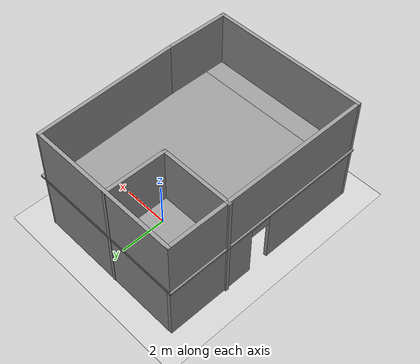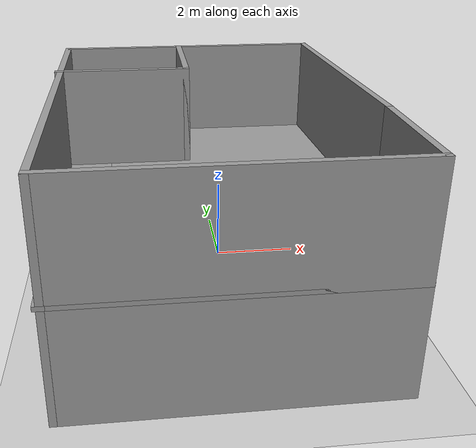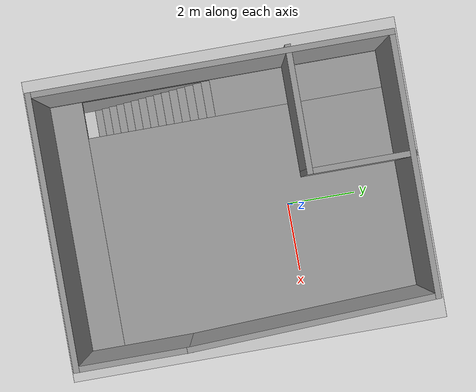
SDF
<sdf version="1.7">
 <world name="default">
  <light name="sun" type="directional">
   <pose>0 0 10 0 -0 0</pose>
   <diffuse>0.8 0.8 0.8 1</diffuse>
   <specular>0.2 0.2 0.2 1</specular>
   <attenuation>
    <range>1000</range>
    <constant>0.9</constant>
    <linear>0.01</linear>
    <quadratic>0.001</quadratic>
   </attenuation>
   <direction>-0.5 0.1 -0.9</direction>
   <spot><inner_angle>0</inner_angle><outer_angle>0</outer_angle><falloff>0</falloff></spot>
  </light>
  <model name="ground_plane">
   <static>1</static>
   <link name="link">
    <collision name="collision">
     <geometry><plane><normal>0 0 1</normal><size>100 100</size></plane></geometry>
     <surface>
      <contact><collide_bitmask>65535</collide_bitmask></contact>
      <friction><ode><mu>100</mu><mu2>50</mu2></ode></friction>
     </surface>
    </collision>
    <visual name="visual">
     <cast_shadows>0</cast_shadows>
     <geometry><plane><normal>0 0 1</normal><size>100 100</size></plane></geometry>
     <material>
      <script><uri>file://media/materials/scripts/gazebo.material</uri><name>Gazebo/Grey</name></script>
     </material>
    </visual>
   </link>
  </model>
  <gravity>0 0 -9.8</gravity>
  <magnetic_field>6e-06 2.3e-05 -4.2e-05</magnetic_field>
  <atmosphere type="adiabatic"/>
  <physics type="ode">
   <max_step_size>0.001</max_step_size>
   <real_time_factor>1</real_time_factor>
   <real_time_update_rate>1000</real_time_update_rate>
  </physics>
  <scene><ambient>0.4 0.4 0.4 1</ambient><background>0.7 0.7 0.7 1</background><shadows>1</shadows></scene>
  <spherical_coordinates>
   <surface_model>EARTH_WGS84</surface_model>
   <latitude_deg>0</latitude_deg>
   <longitude_deg>0</longitude_deg>
   <elevation>0</elevation>
   <heading_deg>0</heading_deg>
  </spherical_coordinates>
  <model name="unit_box">
   <pose>1.73863 0.8574 0.499995 0 1e-05 0</pose>
   <link name="link">
    <inertial>
     <mass>1</mass>
     <inertia>
      <ixx>0.166667</ixx>
      <ixy>0</ixy>
      <ixz>0</ixz>
      <iyy>0.166667</iyy>
      <iyz>0</iyz>
      <izz>0.166667</izz>
     </inertia>
    </inertial>
    <collision name="collision"><geometry><box><size>1 1 1</size></box></geometry></collision>
    <visual name="visual">
     <geometry><box><size>1 1 1</size></box></geometry>
     <material>
      <script><name>Gazebo/Grey</name><uri>file://media/materials/scripts/gazebo.material</uri></script>
     </material>
    </visual>
   </link>
  </model>
  <model name="unit_cylinder">
   <pose>-1.75873 -3.93343 0.499993 -3e-06 -4e-06 -0</pose>
   <link name="link">
    <inertial>
     <mass>1</mass>
     <inertia><ixx>0.145833</ixx><ixy>0</ixy><ixz>0</ixz><iyy>0.145833</iyy><iyz>0</iyz><izz>0.125</izz></inertia>
    </inertial>
    <collision name="collision">
     <geometry><cylinder><radius>0.5</radius><length>1</length></cylinder></geometry>
    </collision>
    <visual name="visual">
     <geometry><cylinder><radius>0.5</radius><length>1</length></cylinder></geometry>
     <material>
      <script><name>Gazebo/Grey</name><uri>file://media/materials/scripts/gazebo.material</uri></script>
     </material>
    </visual>
   </link>
  </model>
  <model name="room1">
   <pose>-0.411004 -1.56402 0 0 -0 0</pose>
   <link name="Floor_0">
    <pose>0 0 2.5 0 -0 0</pose>
    <visual name="Floor_0_Visual_0">
     <pose>-3.42086 0 0.05 0 -0 0</pose>
     <geometry><box><size>0.224778 9.26617 0.1</size></box></geometry>
     <material>
      <script><uri>file://media/materials/scripts/gazebo.material</uri><name>Gazebo/Grey</name></script>
      <ambient>1 1 1 1</ambient>
     </material>
     <meta><layer>1</layer></meta>
    </visual>
    <collision name="Floor_0_Collision_0">
     <geometry><box><size>0.224778 9.26617 0.1</size></box></geometry>
     <pose>-3.42086 0 0.05 0 -0 0</pose>
    </collision>
    <visual name="Floor_0_Visual_1">
     <pose>0.112389 -4.11929 0.05 0 -0 0</pose>
     <geometry><box><size>6.84172 1.02759 0.1</size></box></geometry>
     <material>
      <script><uri>file://media/materials/scripts/gazebo.material</uri><name>Gazebo/Grey</name></script>
      <ambient>1 1 1 1</ambient>
     </material>
     <meta><layer>1</layer></meta>
    </visual>
    <collision name="Floor_0_Collision_1">
     <geometry><box><size>6.84172 1.02759 0.1</size></box></geometry>
     <pose>0.112389 -4.11929 0.05 0 -0 0</pose>
    </collision>
    <visual name="Floor_0_Visual_2">
     <pose>0.612389 0.513796 0.05 0 -0 0</pose>
     <geometry><box><size>5.84172 8.23858 0.1</size></box></geometry>
     <material>
      <script><uri>file://media/materials/scripts/gazebo.material</uri><name>Gazebo/Grey</name></script>
      <ambient>1 1 1 1</ambient>
     </material>
     <meta><layer>1</layer></meta>
    </visual>
    <collision name="Floor_0_Collision_2">
     <geometry><box><size>5.84172 8.23858 0.1</size></box></geometry>
     <pose>0.612389 0.513796 0.05 0 -0 0</pose>
    </collision>
    <visual name="Floor_0_Visual_3">
     <pose>-2.80847 2.2638 0.05 0 -0 0</pose>
     <geometry><box><size>1 4.73857 0.1</size></box></geometry>
     <material>
      <script><uri>file://media/materials/scripts/gazebo.material</uri><name>Gazebo/Grey</name></script>
      <ambient>1 1 1 1</ambient>
     </material>
     <meta><layer>1</layer></meta>
    </visual>
    <collision name="Floor_0_Collision_3">
     <geometry><box><size>1 4.73857 0.1</size></box></geometry>
     <pose>-2.80847 2.2638 0.05 0 -0 0</pose>
    </collision>
   </link>
   <link name="Stairs_1">
    <visual name="Stairs_1_Visual_0">
     <pose>-2.80847 -3.48882 0.083333 0 -0 -3.14159</pose>
     <geometry><box><size>1 0.233333 0.166667</size></box></geometry>
     <material>
      <script><uri>file://media/materials/scripts/gazebo.material</uri><name>Gazebo/Grey</name></script>
      <ambient>1 1 1 1</ambient>
     </material>
     <meta><layer>0</layer></meta>
    </visual>
    <collision name="Stairs_1_Collision_0">
     <geometry><box><size>1 0.233333 0.166667</size></box></geometry>
     <pose>-2.80847 -3.48882 0.083333 0 -0 -3.14159</pose>
    </collision>
    <visual name="Stairs_1_Visual_1">
     <pose>-2.80847 -3.25549 0.25 0 -0 -3.14159</pose>
     <geometry><box><size>1 0.233333 0.166667</size></box></geometry>
     <material>
      <script><uri>file://media/materials/scripts/gazebo.material</uri><name>Gazebo/Grey</name></script>
      <ambient>1 1 1 1</ambient>
     </material>
     <meta><layer>0</layer></meta>
    </visual>
    <collision name="Stairs_1_Collision_1">
     <geometry><box><size>1 0.233333 0.166667</size></box></geometry>
     <pose>-2.80847 -3.25549 0.25 0 -0 -3.14159</pose>
    </collision>
    <visual name="Stairs_1_Visual_2">
     <pose>-2.80847 -3.02216 0.416667 0 -0 -3.14159</pose>
     <geometry><box><size>1 0.233333 0.166667</size></box></geometry>
     <material>
      <script><uri>file://media/materials/scripts/gazebo.material</uri><name>Gazebo/Grey</name></script>
      <ambient>1 1 1 1</ambient>
     </material>
     <meta><layer>0</layer></meta>
    </visual>
    <collision name="Stairs_1_Collision_2">
     <geometry><box><size>1 0.233333 0.166667</size></box></geometry>
     <pose>-2.80847 -3.02216 0.416667 0 -0 -3.14159</pose>
    </collision>
    <visual name="Stairs_1_Visual_3">
     <pose>-2.80847 -2.78883 0.583333 0 -0 -3.14159</pose>
     <geometry><box><size>1 0.233333 0.166667</size></box></geometry>
     <material>
      <script><uri>file://media/materials/scripts/gazebo.material</uri><name>Gazebo/Grey</name></script>
      <ambient>1 1 1 1</ambient>
     </material>
     <meta><layer>0</layer></meta>
    </visual>
    <collision name="Stairs_1_Collision_3">
     <geometry><box><size>1 0.233333 0.166667</size></box></geometry>
     <pose>-2.80847 -2.78883 0.583333 0 -0 -3.14159</pose>
    </collision>
    <visual name="Stairs_1_Visual_4">
     <pose>-2.80847 -2.55549 0.75 0 -0 -3.14159</pose>
     <geometry><box><size>1 0.233333 0.166667</size></box></geometry>
     <material>
      <script><uri>file://media/materials/scripts/gazebo.material</uri><name>Gazebo/Grey</name></script>
      <ambient>1 1 1 1</ambient>
     </material>
     <meta><layer>0</layer></meta>
    </visual>
    <collision name="Stairs_1_Collision_4">
     <geometry><box><size>1 0.233333 0.166667</size></box></geometry>
     <pose>-2.80847 -2.55549 0.75 0 -0 -3.14159</pose>
    </collision>
    <visual name="Stairs_1_Visual_5">
     <pose>-2.80847 -2.32216 0.916667 0 -0 -3.14159</pose>
     <geometry><box><size>1 0.233333 0.166667</size></box></geometry>
     <material>
      <script><uri>file://media/materials/scripts/gazebo.material</uri><name>Gazebo/Grey</name></script>
      <ambient>1 1 1 1</ambient>
     </material>
     <meta><layer>0</layer></meta>
    </visual>
    <collision name="Stairs_1_Collision_5">
     <geometry><box><size>1 0.233333 0.166667</size></box></geometry>
     <pose>-2.80847 -2.32216 0.916667 0 -0 -3.14159</pose>
    </collision>
    <visual name="Stairs_1_Visual_6">
     <pose>-2.80847 -2.08882 1.08333 0 -0 -3.14159</pose>
     <geometry><box><size>1 0.233333 0.166667</size></box></geometry>
     <material>
      <script><uri>file://media/materials/scripts/gazebo.material</uri><name>Gazebo/Grey</name></script>
      <ambient>1 1 1 1</ambient>
     </material>
     <meta><layer>0</layer></meta>
    </visual>
    <collision name="Stairs_1_Collision_6">
     <geometry><box><size>1 0.233333 0.166667</size></box></geometry>
     <pose>-2.80847 -2.08882 1.08333 0 -0 -3.14159</pose>
    </collision>
    <visual name="Stairs_1_Visual_7">
     <pose>-2.80847 -1.85549 1.25 0 -0 -3.14159</pose>
     <geometry><box><size>1 0.233333 0.166667</size></box></geometry>
     <material>
      <script><uri>file://media/materials/scripts/gazebo.material</uri><name>Gazebo/Grey</name></script>
      <ambient>1 1 1 1</ambient>
     </material>
     <meta><layer>0</layer></meta>
    </visual>
    <collision name="Stairs_1_Collision_7">
     <geometry><box><size>1 0.233333 0.166667</size></box></geometry>
     <pose>-2.80847 -1.85549 1.25 0 -0 -3.14159</pose>
    </collision>
    <visual name="Stairs_1_Visual_8">
     <pose>-2.80847 -1.62216 1.41667 0 -0 -3.14159</pose>
     <geometry><box><size>1 0.233333 0.166667</size></box></geometry>
     <material>
      <script><uri>file://media/materials/scripts/gazebo.material</uri><name>Gazebo/Grey</name></script>
      <ambient>1 1 1 1</ambient>
     </material>
     <meta><layer>0</layer></meta>
    </visual>
    <collision name="Stairs_1_Collision_8">
     <geometry><box><size>1 0.233333 0.166667</size></box></geometry>
     <pose>-2.80847 -1.62216 1.41667 0 -0 -3.14159</pose>
    </collision>
    <visual name="Stairs_1_Visual_9">
     <pose>-2.80847 -1.38882 1.58333 0 -0 -3.14159</pose>
     <geometry><box><size>1 0.233333 0.166667</size></box></geometry>
     <material>
      <script><uri>file://media/materials/scripts/gazebo.material</uri><name>Gazebo/Grey</name></script>
      <ambient>1 1 1 1</ambient>
     </material>
     <meta><layer>0</layer></meta>
    </visual>
    <collision name="Stairs_1_Collision_9">
     <geometry><box><size>1 0.233333 0.166667</size></box></geometry>
     <pose>-2.80847 -1.38882 1.58333 0 -0 -3.14159</pose>
    </collision>
    <visual name="Stairs_1_Visual_10">
     <pose>-2.80847 -1.15549 1.75 0 -0 -3.14159</pose>
     <geometry><box><size>1 0.233333 0.166667</size></box></geometry>
     <material>
      <script><uri>file://media/materials/scripts/gazebo.material</uri><name>Gazebo/Grey</name></script>
      <ambient>1 1 1 1</ambient>
     </material>
     <meta><layer>0</layer></meta>
    </visual>
    <collision name="Stairs_1_Collision_10">
     <geometry><box><size>1 0.233333 0.166667</size></box></geometry>
     <pose>-2.80847 -1.15549 1.75 0 -0 -3.14159</pose>
    </collision>
    <visual name="Stairs_1_Visual_11">
     <pose>-2.80847 -0.922158 1.91667 0 -0 -3.14159</pose>
     <geometry><box><size>1 0.233333 0.166667</size></box></geometry>
     <material>
      <script><uri>file://media/materials/scripts/gazebo.material</uri><name>Gazebo/Grey</name></script>
      <ambient>1 1 1 1</ambient>
     </material>
     <meta><layer>0</layer></meta>
    </visual>
    <collision name="Stairs_1_Collision_11">
     <geometry><box><size>1 0.233333 0.166667</size></box></geometry>
     <pose>-2.80847 -0.922158 1.91667 0 -0 -3.14159</pose>
    </collision>
    <visual name="Stairs_1_Visual_12">
     <pose>-2.80847 -0.688825 2.08333 0 -0 -3.14159</pose>
     <geometry><box><size>1 0.233333 0.166667</size></box></geometry>
     <material>
      <script><uri>file://media/materials/scripts/gazebo.material</uri><name>Gazebo/Grey</name></script>
      <ambient>1 1 1 1</ambient>
     </material>
     <meta><layer>0</layer></meta>
    </visual>
    <collision name="Stairs_1_Collision_12">
     <geometry><box><size>1 0.233333 0.166667</size></box></geometry>
     <pose>-2.80847 -0.688825 2.08333 0 -0 -3.14159</pose>
    </collision>
    <visual name="Stairs_1_Visual_13">
     <pose>-2.80847 -0.455492 2.25 0 -0 -3.14159</pose>
     <geometry><box><size>1 0.233333 0.166667</size></box></geometry>
     <material>
      <script><uri>file://media/materials/scripts/gazebo.material</uri><name>Gazebo/Grey</name></script>
      <ambient>1 1 1 1</ambient>
     </material>
     <meta><layer>0</layer></meta>
    </visual>
    <collision name="Stairs_1_Collision_13">
     <geometry><box><size>1 0.233333 0.166667</size></box></geometry>
     <pose>-2.80847 -0.455492 2.25 0 -0 -3.14159</pose>
    </collision>
    <visual name="Stairs_1_Visual_14">
     <pose>-2.80847 -0.222158 2.41667 0 -0 -3.14159</pose>
     <geometry><box><size>1 0.233333 0.166667</size></box></geometry>
     <material>
      <script><uri>file://media/materials/scripts/gazebo.material</uri><name>Gazebo/Grey</name></script>
      <ambient>1 1 1 1</ambient>
     </material>
     <meta><layer>0</layer></meta>
    </visual>
    <collision name="Stairs_1_Collision_14">
     <geometry><box><size>1 0.233333 0.166667</size></box></geometry>
     <pose>-2.80847 -0.222158 2.41667 0 -0 -3.14159</pose>
    </collision>
   </link>
   <link name="Wall_0">
    <collision name="Wall_0_Collision">
     <geometry><box><size>3 0.15 2.5</size></box></geometry>
     <pose>0 0 1.25 0 -0 0</pose>
    </collision>
    <visual name="Wall_0_Visual">
     <pose>0 0 1.25 0 -0 0</pose>
     <geometry><box><size>3 0.15 2.5</size></box></geometry>
     <material>
      <script><uri>file://media/materials/scripts/gazebo.material</uri><name>Gazebo/Grey</name></script>
      <ambient>1 1 1 1</ambient>
     </material>
     <meta><layer>0</layer></meta>
    </visual>
    <pose>3.45531 -3.13308 0 0 -0 -1.5708</pose>
   </link>
   <link name="Wall_1">
    <collision name="Wall_1_Collision">
     <geometry><box><size>7 0.15 2.5</size></box></geometry>
     <pose>0 0 1.25 0 -0 0</pose>
    </collision>
    <visual name="Wall_1_Visual">
     <pose>0 0 1.25 0 -0 0</pose>
     <geometry><box><size>7 0.15 2.5</size></box></geometry>
     <material>
      <script><uri>file://media/materials/scripts/gazebo.material</uri><name>Gazebo/Grey</name></script>
      <ambient>1 1 1 1</ambient>
     </material>
     <meta><layer>0</layer></meta>
    </visual>
    <pose>0.030313 -4.55808 0 0 -0 3.14159</pose>
   </link>
   <link name="Wall_10">
    <collision name="Wall_10_Collision">
     <geometry><box><size>7 0.15 2.5</size></box></geometry>
     <pose>0 0 1.25 0 -0 0</pose>
    </collision>
    <visual name="Wall_10_Visual">
     <pose>0 0 1.25 0 -0 0</pose>
     <geometry><box><size>7 0.15 2.5</size></box></geometry>
     <material>
      <script><uri>file://media/materials/scripts/gazebo.material</uri><name>Gazebo/Grey</name></script>
      <ambient>1 1 1 1</ambient>
     </material>
     <meta><layer>1</layer></meta>
    </visual>
    <pose>0.030313 -4.55808 2.5 0 -0 3.14159</pose>
   </link>
   <link name="Wall_11">
    <collision name="Wall_11_Collision">
     <geometry><box><size>9.25 0.15 2.5</size></box></geometry>
     <pose>0 0 1.25 0 -0 0</pose>
    </collision>
    <visual name="Wall_11_Visual">
     <pose>0 0 1.25 0 -0 0</pose>
     <geometry><box><size>9.25 0.15 2.5</size></box></geometry>
     <material>
      <script><uri>file://media/materials/scripts/gazebo.material</uri><name>Gazebo/Grey</name></script>
      <ambient>1 1 1 1</ambient>
     </material>
     <meta><layer>1</layer></meta>
    </visual>
    <pose>-3.39469 -0.008083 2.5 0 -0 1.5708</pose>
   </link>
   <link name="Wall_12">
    <collision name="Wall_12_Collision">
     <geometry><box><size>6.75 0.15 2.5</size></box></geometry>
     <pose>0 0 1.25 0 -0 0</pose>
    </collision>
    <visual name="Wall_12_Visual">
     <pose>0 0 1.25 0 -0 0</pose>
     <geometry><box><size>6.75 0.15 2.5</size></box></geometry>
     <material>
      <script><uri>file://media/materials/scripts/gazebo.material</uri><name>Gazebo/Grey</name></script>
      <ambient>1 1 1 1</ambient>
     </material>
     <meta><layer>1</layer></meta>
    </visual>
    <pose>-0.094687 4.54192 2.5 0 -0 0</pose>
   </link>
   <link name="Wall_13">
    <collision name="Wall_13_Collision">
     <geometry><box><size>6.405 0.15 2.5</size></box></geometry>
     <pose>0 0 1.25 0 -0 0</pose>
    </collision>
    <visual name="Wall_13_Visual">
     <pose>0 0 1.25 0 -0 0</pose>
     <geometry><box><size>6.405 0.15 2.5</size></box></geometry>
     <material>
      <script><uri>file://media/materials/scripts/gazebo.material</uri><name>Gazebo/Grey</name></script>
      <ambient>1 1 1 1</ambient>
     </material>
     <meta><layer>1</layer></meta>
    </visual>
    <pose>3.33031 1.41692 2.5 0 -0 -1.53082</pose>
   </link>
   <link name="Wall_14">
    <collision name="Wall_14_Collision">
     <geometry><box><size>3.25 0.15 2.5</size></box></geometry>
     <pose>0 0 1.25 0 -0 0</pose>
    </collision>
    <visual name="Wall_14_Visual">
     <pose>0 0 1.25 0 -0 0</pose>
     <geometry><box><size>3.25 0.15 2.5</size></box></geometry>
     <material>
      <script><uri>file://media/materials/scripts/gazebo.material</uri><name>Gazebo/Grey</name></script>
      <ambient>1 1 1 1</ambient>
     </material>
     <meta><layer>1</layer></meta>
    </visual>
    <pose>-1.90825 1.95808 2.5 0 -0 0</pose>
   </link>
   <link name="Wall_15">
    <collision name="Wall_15_Collision">
     <geometry><box><size>2.75 0.15 2.5</size></box></geometry>
     <pose>0 0 1.25 0 -0 0</pose>
    </collision>
    <visual name="Wall_15_Visual">
     <pose>0 0 1.25 0 -0 0</pose>
     <geometry><box><size>2.75 0.15 2.5</size></box></geometry>
     <material>
      <script><uri>file://media/materials/scripts/gazebo.material</uri><name>Gazebo/Grey</name></script>
      <ambient>1 1 1 1</ambient>
     </material>
     <meta><layer>1</layer></meta>
    </visual>
    <pose>-0.35825 3.25808 2.5 0 -0 1.5708</pose>
   </link>
   <link name="Wall_2">
    <pose>-3.39469 -0.008083 0 0 -0 1.5708</pose>
    <visual name="Wall_2_Visual_0">
     <pose>-2.39232 0 1.25 0 -0 0</pose>
     <geometry><box><size>4.46535 0.15 2.5</size></box></geometry>
     <material>
      <script><uri>file://media/materials/scripts/gazebo.material</uri><name>Gazebo/Grey</name></script>
      <ambient>1 1 1 1</ambient>
     </material>
     <meta><layer>0</layer></meta>
    </visual>
    <collision name="Wall_2_Collision_0">
     <geometry><box><size>4.46535 0.15 2.5</size></box></geometry>
     <pose>-2.39232 0 1.25 0 -0 0</pose>
    </collision>
    <visual name="Wall_2_Visual_1">
     <pose>2.68268 0 1.25 0 -0 0</pose>
     <geometry><box><size>3.88465 0.15 2.5</size></box></geometry>
     <material>
      <script><uri>file://media/materials/scripts/gazebo.material</uri><name>Gazebo/Grey</name></script>
      <ambient>1 1 1 1</ambient>
     </material>
     <meta><layer>0</layer></meta>
    </visual>
    <collision name="Wall_2_Collision_1">
     <geometry><box><size>3.88465 0.15 2.5</size></box></geometry>
     <pose>2.68268 0 1.25 0 -0 0</pose>
    </collision>
    <visual name="Wall_2_Visual_2">
     <pose>0.290354 0 2.25 0 -0 0</pose>
     <geometry><box><size>0.9 0.15 0.5</size></box></geometry>
     <material>
      <script><uri>file://media/materials/scripts/gazebo.material</uri><name>Gazebo/Grey</name></script>
      <ambient>1 1 1 1</ambient>
     </material>
     <meta><layer>0</layer></meta>
    </visual>
    <collision name="Wall_2_Collision_2">
     <geometry><box><size>0.9 0.15 0.5</size></box></geometry>
     <pose>0.290354 0 2.25 0 -0 0</pose>
    </collision>
   </link>
   <link name="Wall_3">
    <collision name="Wall_3_Collision">
     <geometry><box><size>6.75 0.15 2.5</size></box></geometry>
     <pose>0 0 1.25 0 -0 0</pose>
    </collision>
    <visual name="Wall_3_Visual">
     <pose>0 0 1.25 0 -0 0</pose>
     <geometry><box><size>6.75 0.15 2.5</size></box></geometry>
     <material>
      <script><uri>file://media/materials/scripts/gazebo.material</uri><name>Gazebo/Grey</name></script>
      <ambient>1 1 1 1</ambient>
     </material>
     <meta><layer>0</layer></meta>
    </visual>
    <pose>-0.094687 4.54192 0 0 -0 0</pose>
   </link>
   <link name="Wall_4">
    <collision name="Wall_4_Collision">
     <geometry><box><size>6.405 0.15 2.5</size></box></geometry>
     <pose>0 0 1.25 0 -0 0</pose>
    </collision>
    <visual name="Wall_4_Visual">
     <pose>0 0 1.25 0 -0 0</pose>
     <geometry><box><size>6.405 0.15 2.5</size></box></geometry>
     <material>
      <script><uri>file://media/materials/scripts/gazebo.material</uri><name>Gazebo/Grey</name></script>
      <ambient>1 1 1 1</ambient>
     </material>
     <meta><layer>0</layer></meta>
    </visual>
    <pose>3.33031 1.41692 0 0 -0 -1.53082</pose>
   </link>
   <link name="Wall_6">
    <pose>-1.90825 1.95808 0 0 -0 0</pose>
    <visual name="Wall_6_Visual_0">
     <pose>-1.06769 0 1.25 0 -0 0</pose>
     <geometry><box><size>1.11461 0.15 2.5</size></box></geometry>
     <material>
      <script><uri>file://media/materials/scripts/gazebo.material</uri><name>Gazebo/Grey</name></script>
      <ambient>1 1 1 1</ambient>
     </material>
     <meta><layer>0</layer></meta>
    </visual>
    <collision name="Wall_6_Collision_0">
     <geometry><box><size>1.11461 0.15 2.5</size></box></geometry>
     <pose>-1.06769 0 1.25 0 -0 0</pose>
    </collision>
    <visual name="Wall_6_Visual_1">
     <pose>1.00731 0 1.25 0 -0 0</pose>
     <geometry><box><size>1.23539 0.15 2.5</size></box></geometry>
     <material>
      <script><uri>file://media/materials/scripts/gazebo.material</uri><name>Gazebo/Grey</name></script>
      <ambient>1 1 1 1</ambient>
     </material>
     <meta><layer>0</layer></meta>
    </visual>
    <collision name="Wall_6_Collision_1">
     <geometry><box><size>1.23539 0.15 2.5</size></box></geometry>
     <pose>1.00731 0 1.25 0 -0 0</pose>
    </collision>
    <visual name="Wall_6_Visual_2">
     <pose>-0.060389 0 2.25 0 -0 0</pose>
     <geometry><box><size>0.9 0.15 0.5</size></box></geometry>
     <material>
      <script><uri>file://media/materials/scripts/gazebo.material</uri><name>Gazebo/Grey</name></script>
      <ambient>1 1 1 1</ambient>
     </material>
     <meta><layer>0</layer></meta>
    </visual>
    <collision name="Wall_6_Collision_2">
     <geometry><box><size>0.9 0.15 0.5</size></box></geometry>
     <pose>-0.060389 0 2.25 0 -0 0</pose>
    </collision>
   </link>
   <link name="Wall_7">
    <collision name="Wall_7_Collision">
     <geometry><box><size>2.75 0.15 2.5</size></box></geometry>
     <pose>0 0 1.25 0 -0 0</pose>
    </collision>
    <visual name="Wall_7_Visual">
     <pose>0 0 1.25 0 -0 0</pose>
     <geometry><box><size>2.75 0.15 2.5</size></box></geometry>
     <material>
      <script><uri>file://media/materials/scripts/gazebo.material</uri><name>Gazebo/Grey</name></script>
      <ambient>1 1 1 1</ambient>
     </material>
     <meta><layer>0</layer></meta>
    </visual>
    <pose>-0.35825 3.25808 0 0 -0 1.5708</pose>
   </link>
   <link name="Wall_9">
    <collision name="Wall_9_Collision">
     <geometry><box><size>3 0.15 2.5</size></box></geometry>
     <pose>0 0 1.25 0 -0 0</pose>
    </collision>
    <visual name="Wall_9_Visual">
     <pose>0 0 1.25 0 -0 0</pose>
     <geometry><box><size>3 0.15 2.5</size></box></geometry>
     <material>
      <script><uri>file://media/materials/scripts/gazebo.material</uri><name>Gazebo/Grey</name></script>
      <ambient>1 1 1 1</ambient>
     </material>
     <meta><layer>1</layer></meta>
    </visual>
    <pose>3.45531 -3.13308 2.5 0 -0 -1.5708</pose>
   </link>
   <static>1</static>
  </model>
 </world>
</sdf>
